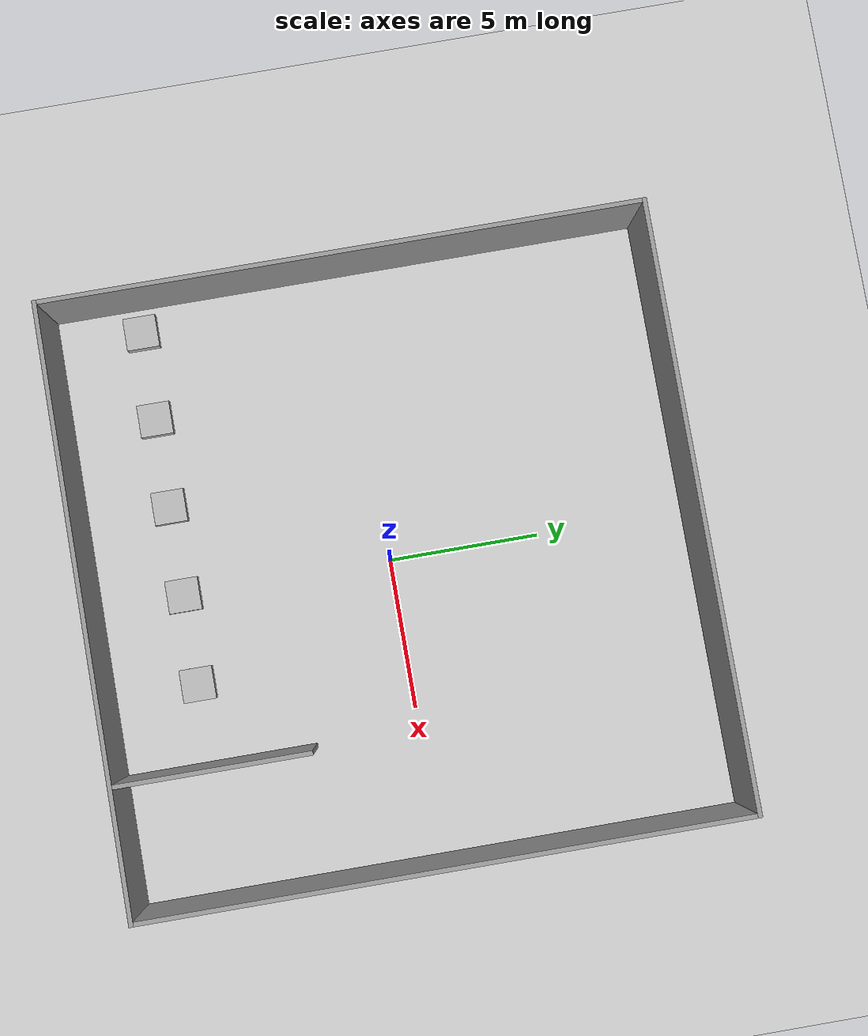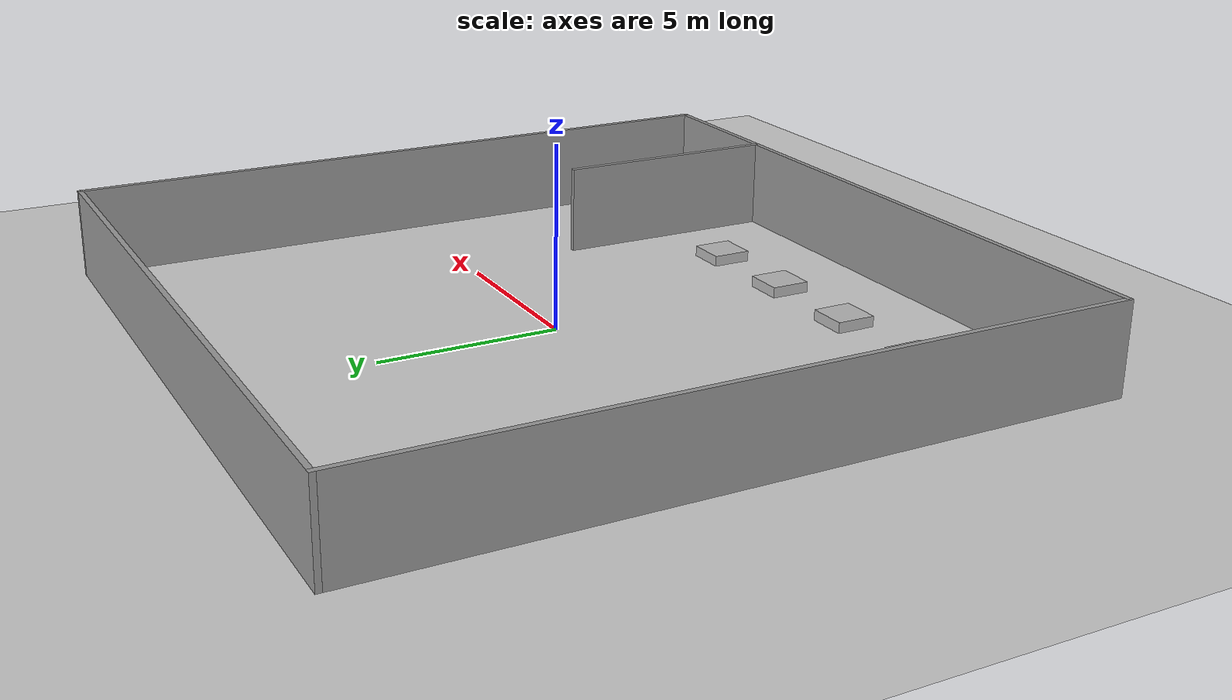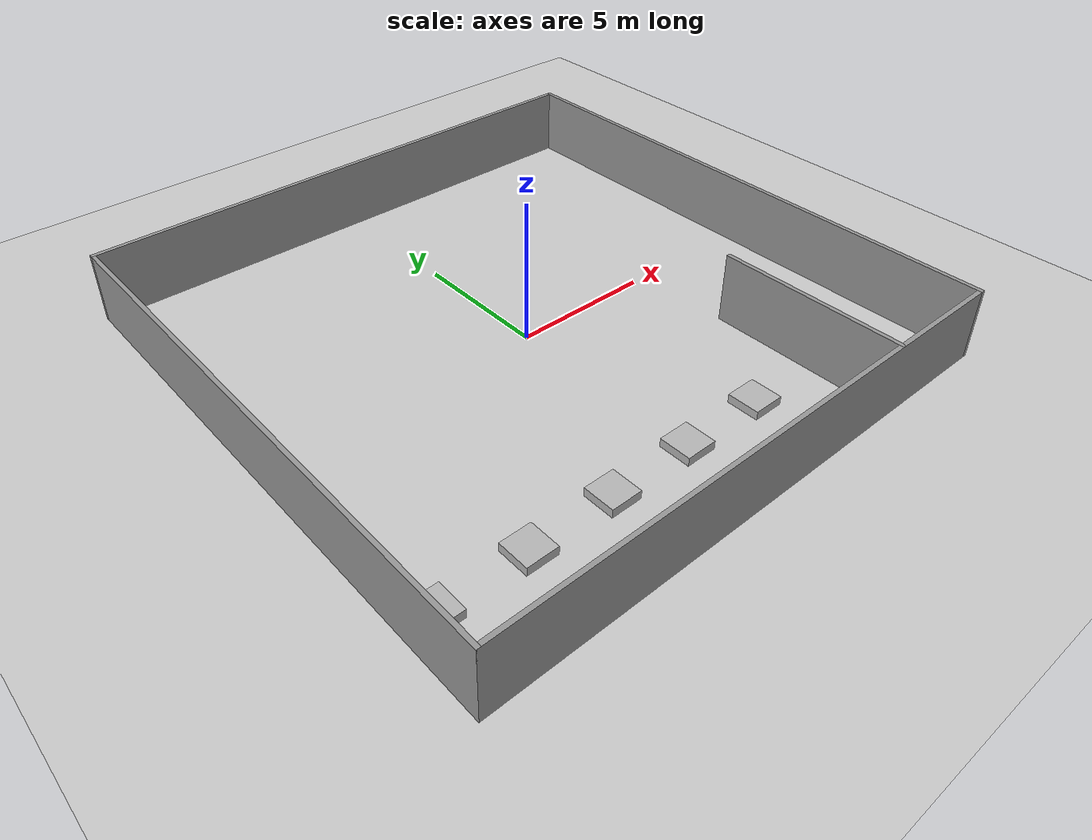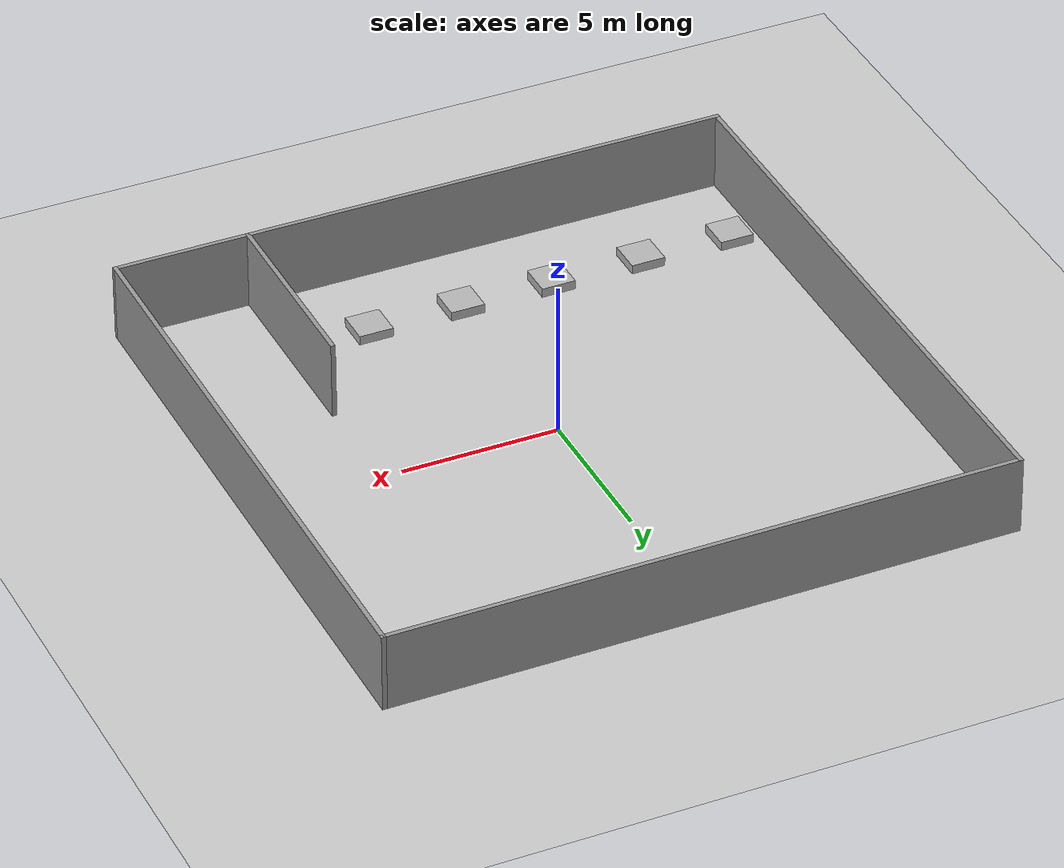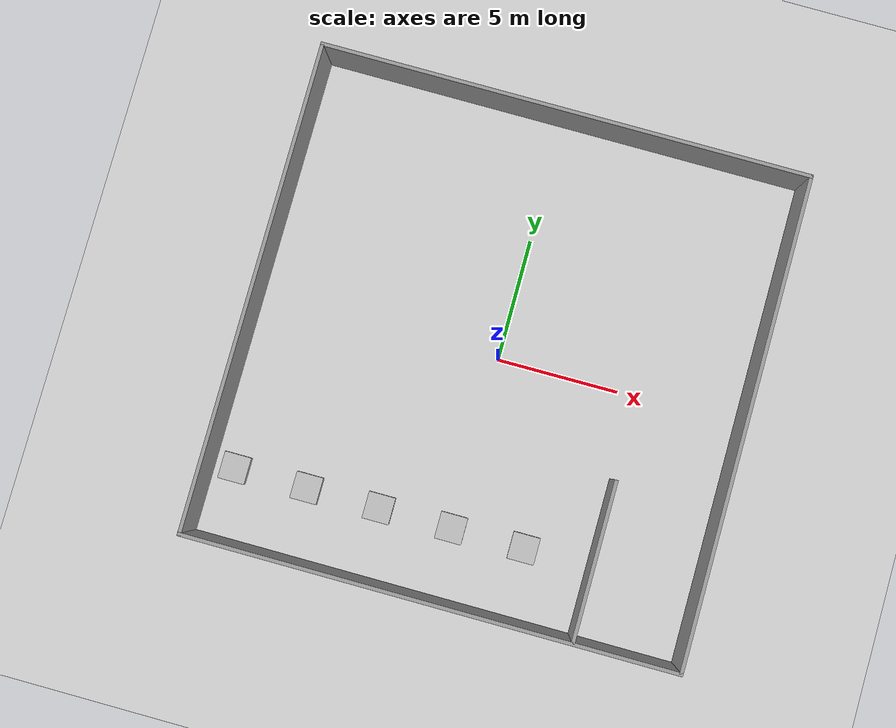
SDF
<sdf version="1.7">
 <world name="default">
  <light name="sun" type="directional">
   <pose>0 0 10 0 -0 0</pose>
   <diffuse>0.8 0.8 0.8 1</diffuse>
   <specular>0.2 0.2 0.2 1</specular>
   <attenuation>
    <range>1000</range>
    <constant>0.9</constant>
    <linear>0.01</linear>
    <quadratic>0.001</quadratic>
   </attenuation>
   <direction>-0.5 0.1 -0.9</direction>
   <spot><inner_angle>0</inner_angle><outer_angle>0</outer_angle><falloff>0</falloff></spot>
  </light>
  <model name="ground_plane">
   <static>1</static>
   <link name="link">
    <collision name="collision">
     <geometry><plane><normal>0 0 1</normal><size>100 100</size></plane></geometry>
     <surface>
      <contact><collide_bitmask>65535</collide_bitmask></contact>
      <friction><ode><mu>100</mu><mu2>50</mu2></ode></friction>
     </surface>
    </collision>
    <visual name="visual">
     <cast_shadows>0</cast_shadows>
     <geometry><plane><normal>0 0 1</normal><size>100 100</size></plane></geometry>
     <material>
      <script><uri>file://media/materials/scripts/gazebo.material</uri><name>Gazebo/Grey</name></script>
     </material>
    </visual>
   </link>
  </model>
  <gravity>0 0 -9.8</gravity>
  <magnetic_field>6e-06 2.3e-05 -4.2e-05</magnetic_field>
  <atmosphere type="adiabatic"/>
  <physics type="ode">
   <max_step_size>0.001</max_step_size>
   <real_time_factor>1</real_time_factor>
   <real_time_update_rate>1000</real_time_update_rate>
  </physics>
  <scene><ambient>0.4 0.4 0.4 1</ambient><background>0.7 0.7 0.7 1</background><shadows>1</shadows></scene>
  <spherical_coordinates>
   <surface_model>EARTH_WGS84</surface_model>
   <latitude_deg>0</latitude_deg>
   <longitude_deg>0</longitude_deg>
   <elevation>0</elevation>
   <heading_deg>0</heading_deg>
  </spherical_coordinates>
  <model name="fp_world">
   <pose>0.011766 0.068977 0 0 -0 0</pose>
   <link name="Wall_10">
    <collision name="Wall_10_Collision">
     <geometry><box><size>20 0.15 2.5</size></box></geometry>
     <pose>0 0 1.25 0 -0 0</pose>
    </collision>
    <visual name="Wall_10_Visual">
     <pose>0 0 1.25 0 -0 0</pose>
     <geometry><box><size>20 0.15 2.5</size></box></geometry>
     <material>
      <script><uri>file://media/materials/scripts/gazebo.material</uri><name>Gazebo/Grey</name></script>
      <ambient>1 1 1 1</ambient>
     </material>
     <meta><layer>0</layer></meta>
    </visual>
    <pose>-0 -9.925 0 0 -0 0</pose>
   </link>
   <link name="Wall_25">
    <collision name="Wall_25_Collision">
     <geometry><box><size>6.5 0.15 2.5</size></box></geometry>
     <pose>0 0 1.25 0 -0 0</pose>
    </collision>
    <visual name="Wall_25_Visual">
     <pose>0 0 1.25 0 -0 0</pose>
     <geometry><box><size>6.5 0.15 2.5</size></box></geometry>
     <material>
      <script><uri>file://media/materials/scripts/gazebo.material</uri><name>Gazebo/Grey</name></script>
      <ambient>1 1 1 1</ambient>
     </material>
     <meta><layer>0</layer></meta>
    </visual>
    <pose>5.65954 -6.73626 0 0 -0 1.5708</pose>
   </link>
   <link name="Wall_4">
    <collision name="Wall_4_Collision">
     <geometry><box><size>20 0.15 2.5</size></box></geometry>
     <pose>0 0 1.25 0 -0 0</pose>
    </collision>
    <visual name="Wall_4_Visual">
     <pose>0 0 1.25 0 -0 0</pose>
     <geometry><box><size>20 0.15 2.5</size></box></geometry>
     <material>
      <script><uri>file://media/materials/scripts/gazebo.material</uri><name>Gazebo/Grey</name></script>
      <ambient>1 1 1 1</ambient>
     </material>
     <meta><layer>0</layer></meta>
    </visual>
    <pose>-0 9.925 0 0 -0 3.14159</pose>
   </link>
   <link name="Wall_6">
    <collision name="Wall_6_Collision">
     <geometry><box><size>20 0.15 2.5</size></box></geometry>
     <pose>0 0 1.25 0 -0 0</pose>
    </collision>
    <visual name="Wall_6_Visual">
     <pose>0 0 1.25 0 -0 0</pose>
     <geometry><box><size>20 0.15 2.5</size></box></geometry>
     <material>
      <script><uri>file://media/materials/scripts/gazebo.material</uri><name>Gazebo/Grey</name></script>
      <ambient>1 1 1 1</ambient>
     </material>
     <meta><layer>0</layer></meta>
    </visual>
    <pose>9.925 -0 0 0 -0 -1.5708</pose>
   </link>
   <link name="Wall_8">
    <collision name="Wall_8_Collision">
     <geometry><box><size>20 0.15 2.5</size></box></geometry>
     <pose>0 0 1.25 0 -0 0</pose>
    </collision>
    <visual name="Wall_8_Visual">
     <pose>0 0 1.25 0 -0 0</pose>
     <geometry><box><size>20 0.15 2.5</size></box></geometry>
     <material>
      <script><uri>file://media/materials/scripts/gazebo.material</uri><name>Gazebo/Grey</name></script>
      <ambient>1 1 1 1</ambient>
     </material>
     <meta><layer>0</layer></meta>
    </visual>
    <pose>-9.925 -0 0 0 -0 -1.5708</pose>
   </link>
   <static>1</static>
  </model>
  <model name="pallet1">
   <link name="link_1">
    <inertial>
     <mass>1</mass>
     <inertia><ixx>0.166667</ixx><iyy>0.166667</iyy><izz>0.166667</izz></inertia>
    </inertial>
    <pose>3 -7 0.15 0 0 0</pose>
    <visual name="visual"><geometry><box><size>1.1 1.1 0.3</size></box></geometry></visual>
    <collision name="collision"><geometry><box><size>1.1 1.1 0.3</size></box></geometry></collision>
   </link>
   <static>0</static>
  </model>
  <model name="pallet2">
   <link name="link_1">
    <inertial>
     <mass>1</mass>
     <inertia><ixx>0.166667</ixx><iyy>0.166667</iyy><izz>0.166667</izz></inertia>
    </inertial>
    <pose>0 -7 0.15 0 0 0</pose>
    <visual name="visual"><geometry><box><size>1.1 1.1 0.3</size></box></geometry></visual>
    <collision name="collision"><geometry><box><size>1.1 1.1 0.3</size></box></geometry></collision>
   </link>
   <static>0</static>
  </model>
  <model name="pallet3">
   <link name="link_1">
    <inertial>
     <mass>1</mass>
     <inertia><ixx>0.166667</ixx><iyy>0.166667</iyy><izz>0.166667</izz></inertia>
    </inertial>
    <pose>-3 -7 0.15 0 0 0</pose>
    <visual name="visual"><geometry><box><size>1.1 1.1 0.3</size></box></geometry></visual>
    <collision name="collision"><geometry><box><size>1.1 1.1 0.3</size></box></geometry></collision>
   </link>
   <static>0</static>
  </model>
  <model name="pallet4">
   <link name="link_1">
    <inertial>
     <mass>1</mass>
     <inertia><ixx>0.166667</ixx><iyy>0.166667</iyy><izz>0.166667</izz></inertia>
    </inertial>
    <pose>-6 -7 0.15 0 0 0</pose>
    <visual name="visual"><geometry><box><size>1.1 1.1 0.3</size></box></geometry></visual>
    <collision name="collision"><geometry><box><size>1.1 1.1 0.3</size></box></geometry></collision>
   </link>
   <static>0</static>
  </model>
  <model name="pallet5">
   <link name="link_1">
    <inertial>
     <mass>1</mass>
     <inertia><ixx>0.166667</ixx><iyy>0.166667</iyy><izz>0.166667</izz></inertia>
    </inertial>
    <pose>-9 -7 0.15 0 0 0</pose>
    <visual name="visual"><geometry><box><size>1.1 1.1 0.3</size></box></geometry></visual>
    <collision name="collision"><geometry><box><size>1.1 1.1 0.3</size></box></geometry></collision>
   </link>
   <static>0</static>
  </model>
 </world>
</sdf>
